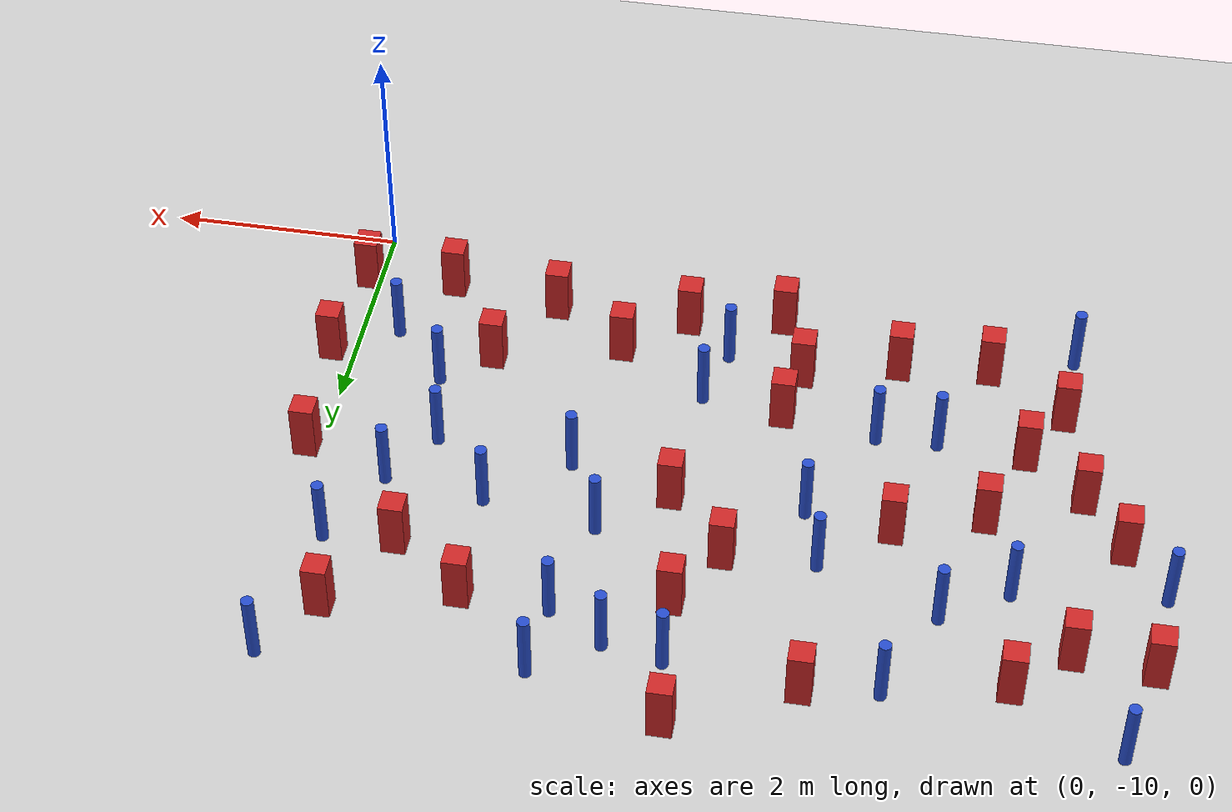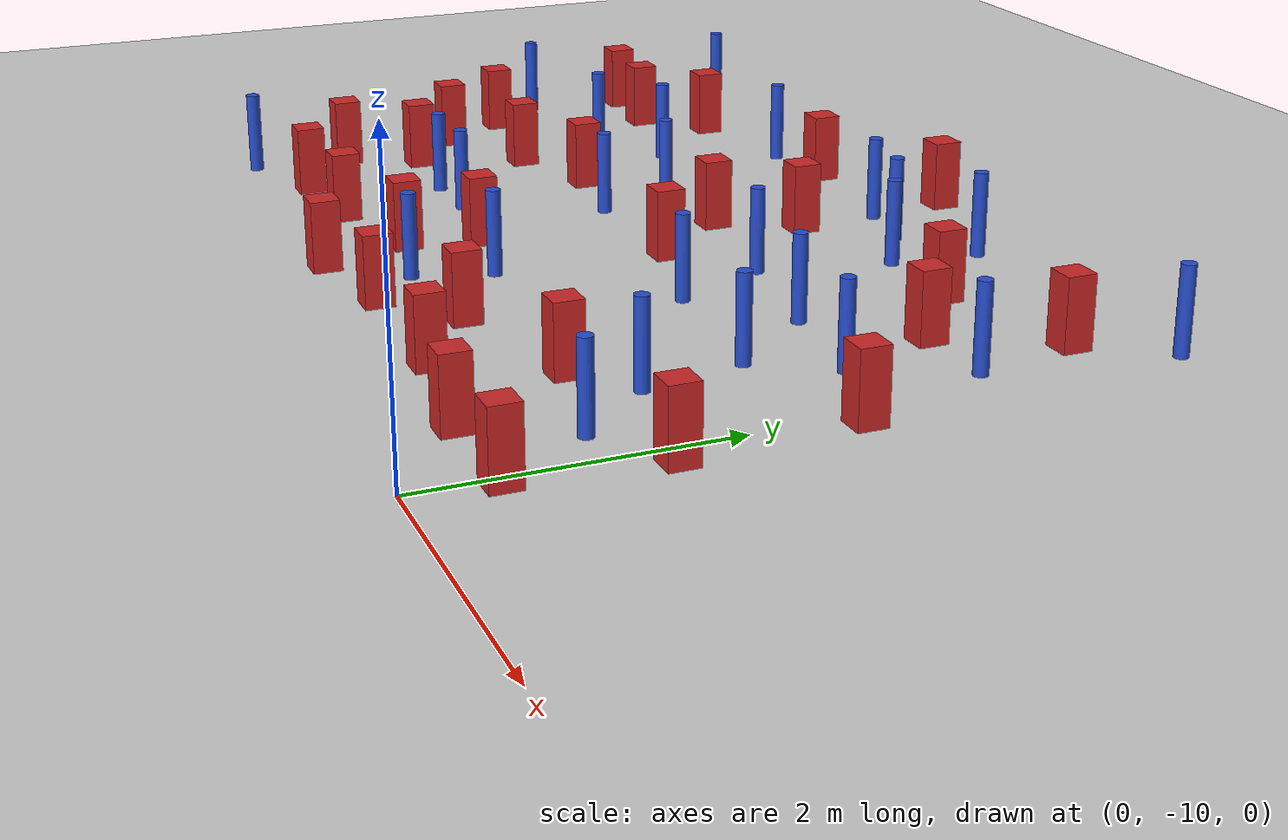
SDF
<sdf version="1.6">
 <world name="default">
  <model name="ground_plane">
   <static>1</static>
   <link name="link">
    <collision name="collision">
     <geometry><plane><normal>0 0 1</normal><size>100 100</size></plane></geometry>
     <surface><friction><ode><mu>100</mu><mu2>50</mu2></ode></friction></surface>
    </collision>
    <visual name="visual">
     <cast_shadows>0</cast_shadows>
     <geometry><plane><normal>0 0 1</normal><size>100 100</size></plane></geometry>
     <material>
      <ambient>1.0 1.0 1.0 1.0</ambient>
      <diffuse>0.8 0.8 0.8 1.0</diffuse>
      <specular>0.01 0.01 0.01 1.000000</specular>
     </material>
    </visual>
   </link>
  </model>
  <model name="square_post_obstacle2">
   <static>true</static>
   <pose>-1.20168735869 -8.64444956129 1.91545236811e-07 -7.35059704564e-06 1.12565212e-07 2.39332434364e-05</pose>
   <link name="link">
    <pose>0 0 0.25 0 -0 0</pose>
    <inertial>
     <mass>100</mass>
     <inertia>
      <ixx>0.166667</ixx>
      <ixy>0</ixy>
      <ixz>0</ixz>
      <iyy>0.166667</iyy>
      <iyz>0</iyz>
      <izz>0.166667</izz>
     </inertia>
    </inertial>
    <collision name="collision"><geometry><box><size>.2 .2 .5</size></box></geometry></collision>
    <visual name="visual">
     <geometry><box><size>.2 .2 .5</size></box></geometry>
     <material>
      <script><name>Gazebo/Red</name><uri>file://media/materials/scripts/gazebo.material</uri></script>
     </material>
    </visual>
   </link>
  </model>
  <model name="square_post_obstacle13">
   <static>true</static>
   <pose>-0.686878680234 -9.48801535259 1.91545236811e-07 -7.35059704564e-06 1.12565212e-07 2.39332434364e-05</pose>
   <link name="link">
    <pose>0 0 0.25 0 -0 0</pose>
    <inertial>
     <mass>100</mass>
     <inertia>
      <ixx>0.166667</ixx>
      <ixy>0</ixy>
      <ixz>0</ixz>
      <iyy>0.166667</iyy>
      <iyz>0</iyz>
      <izz>0.166667</izz>
     </inertia>
    </inertial>
    <collision name="collision"><geometry><box><size>.2 .2 .5</size></box></geometry></collision>
    <visual name="visual">
     <geometry><box><size>.2 .2 .5</size></box></geometry>
     <material>
      <script><name>Gazebo/Red</name><uri>file://media/materials/scripts/gazebo.material</uri></script>
     </material>
    </visual>
   </link>
  </model>
  <model name="pole_obstacle8">
   <static>true</static>
   <pose>-4.21248484026 -6.73208509425 7.38925637345e-09 -8.47170692796e-08 1.24976764786e-08 -1.74513093032e-07</pose>
   <link name="link">
    <pose>0 0 0.3 0 -0 0</pose>
    <inertial>
     <mass>1</mass>
     <inertia><ixx>0.145833</ixx><ixy>0</ixy><ixz>0</ixz><iyy>0.145833</iyy><iyz>0</iyz><izz>0.125</izz></inertia>
    </inertial>
    <collision name="collision">
     <geometry><cylinder><radius>0.05</radius><length>.6</length></cylinder></geometry>
    </collision>
    <visual name="visual">
     <geometry><cylinder><radius>0.05</radius><length>.6</length></cylinder></geometry>
     <material>
      <script><name>Gazebo/Blue</name><uri>file://media/materials/scripts/gazebo.material</uri></script>
     </material>
    </visual>
   </link>
  </model>
  <model name="square_post_obstacle15">
   <static>true</static>
   <pose>-2.27690724691 -8.92274579487 1.91545236811e-07 -7.35059704564e-06 1.12565212e-07 2.39332434364e-05</pose>
   <link name="link">
    <pose>0 0 0.25 0 -0 0</pose>
    <inertial>
     <mass>100</mass>
     <inertia>
      <ixx>0.166667</ixx>
      <ixy>0</ixy>
      <ixz>0</ixz>
      <iyy>0.166667</iyy>
      <iyz>0</iyz>
      <izz>0.166667</izz>
     </inertia>
    </inertial>
    <collision name="collision"><geometry><box><size>.2 .2 .5</size></box></geometry></collision>
    <visual name="visual">
     <geometry><box><size>.2 .2 .5</size></box></geometry>
     <material>
      <script><name>Gazebo/Red</name><uri>file://media/materials/scripts/gazebo.material</uri></script>
     </material>
    </visual>
   </link>
  </model>
  <model name="square_post_obstacle16">
   <static>true</static>
   <pose>-3.45719369046 -6.68199653338 1.91545236811e-07 -7.35059704564e-06 1.12565212e-07 2.39332434364e-05</pose>
   <link name="link">
    <pose>0 0 0.25 0 -0 0</pose>
    <inertial>
     <mass>100</mass>
     <inertia>
      <ixx>0.166667</ixx>
      <ixy>0</ixy>
      <ixz>0</ixz>
      <iyy>0.166667</iyy>
      <iyz>0</iyz>
      <izz>0.166667</izz>
     </inertia>
    </inertial>
    <collision name="collision"><geometry><box><size>.2 .2 .5</size></box></geometry></collision>
    <visual name="visual">
     <geometry><box><size>.2 .2 .5</size></box></geometry>
     <material>
      <script><name>Gazebo/Red</name><uri>file://media/materials/scripts/gazebo.material</uri></script>
     </material>
    </visual>
   </link>
  </model>
  <model name="pole_obstacle16">
   <static>true</static>
   <pose>-0.0484112616853 -5.11918985772 7.38925637345e-09 -8.47170692799e-08 1.24976765086e-08 -1.74513093017e-07</pose>
   <link name="link">
    <pose>0 0 0.3 0 -0 0</pose>
    <inertial>
     <mass>1</mass>
     <inertia><ixx>0.145833</ixx><ixy>0</ixy><ixz>0</ixz><iyy>0.145833</iyy><iyz>0</iyz><izz>0.125</izz></inertia>
    </inertial>
    <collision name="collision">
     <geometry><cylinder><radius>0.05</radius><length>.6</length></cylinder></geometry>
    </collision>
    <visual name="visual">
     <geometry><cylinder><radius>0.05</radius><length>.6</length></cylinder></geometry>
     <material>
      <script><name>Gazebo/Blue</name><uri>file://media/materials/scripts/gazebo.material</uri></script>
     </material>
    </visual>
   </link>
  </model>
  <model name="pole_obstacle18">
   <static>true</static>
   <pose>-5.04143109885 -8.23964521974 7.38925637345e-09 -8.471706928e-08 1.24976765081e-08 -1.74513093015e-07</pose>
   <link name="link">
    <pose>0 0 0.3 0 -0 0</pose>
    <inertial>
     <mass>1</mass>
     <inertia><ixx>0.145833</ixx><ixy>0</ixy><ixz>0</ixz><iyy>0.145833</iyy><iyz>0</iyz><izz>0.125</izz></inertia>
    </inertial>
    <collision name="collision">
     <geometry><cylinder><radius>0.05</radius><length>.6</length></cylinder></geometry>
    </collision>
    <visual name="visual">
     <geometry><cylinder><radius>0.05</radius><length>.6</length></cylinder></geometry>
     <material>
      <script><name>Gazebo/Blue</name><uri>file://media/materials/scripts/gazebo.material</uri></script>
     </material>
    </visual>
   </link>
  </model>
  <model name="pole_obstacle21">
   <static>true</static>
   <pose>-2.67010924325 -5.63333449304 7.38925637345e-09 -8.47170692798e-08 1.24976765033e-08 -1.74513093019e-07</pose>
   <link name="link">
    <pose>0 0 0.3 0 -0 0</pose>
    <inertial>
     <mass>1</mass>
     <inertia><ixx>0.145833</ixx><ixy>0</ixy><ixz>0</ixz><iyy>0.145833</iyy><iyz>0</iyz><izz>0.125</izz></inertia>
    </inertial>
    <collision name="collision">
     <geometry><cylinder><radius>0.05</radius><length>.6</length></cylinder></geometry>
    </collision>
    <visual name="visual">
     <geometry><cylinder><radius>0.05</radius><length>.6</length></cylinder></geometry>
     <material>
      <script><name>Gazebo/Blue</name><uri>file://media/materials/scripts/gazebo.material</uri></script>
     </material>
    </visual>
   </link>
  </model>
  <model name="square_post_obstacle39">
   <static>true</static>
   <pose>-2.95581052496 -7.26107989423 1.91545236811e-07 -7.35059704564e-06 1.12565212e-07 2.39332434364e-05</pose>
   <link name="link">
    <pose>0 0 0.25 0 -0 0</pose>
    <inertial>
     <mass>100</mass>
     <inertia>
      <ixx>0.166667</ixx>
      <ixy>0</ixy>
      <ixz>0</ixz>
      <iyy>0.166667</iyy>
      <iyz>0</iyz>
      <izz>0.166667</izz>
     </inertia>
    </inertial>
    <collision name="collision"><geometry><box><size>.2 .2 .5</size></box></geometry></collision>
    <visual name="visual">
     <geometry><box><size>.2 .2 .5</size></box></geometry>
     <material>
      <script><name>Gazebo/Red</name><uri>file://media/materials/scripts/gazebo.material</uri></script>
     </material>
    </visual>
   </link>
  </model>
  <model name="square_post_obstacle48">
   <static>true</static>
   <pose>-3.24626801114 -4.93754020114 1.91545236811e-07 -7.35059704564e-06 1.12565212e-07 2.39332434364e-05</pose>
   <link name="link">
    <pose>0 0 0.25 0 -0 0</pose>
    <inertial>
     <mass>100</mass>
     <inertia>
      <ixx>0.166667</ixx>
      <ixy>0</ixy>
      <ixz>0</ixz>
      <iyy>0.166667</iyy>
      <iyz>0</iyz>
      <izz>0.166667</izz>
     </inertia>
    </inertial>
    <collision name="collision"><geometry><box><size>.2 .2 .5</size></box></geometry></collision>
    <visual name="visual">
     <geometry><box><size>.2 .2 .5</size></box></geometry>
     <material>
      <script><name>Gazebo/Red</name><uri>file://media/materials/scripts/gazebo.material</uri></script>
     </material>
    </visual>
   </link>
  </model>
  <model name="square_post_obstacle52">
   <static>true</static>
   <pose>-5.49789595483 -7.42657653751 1.91545236811e-07 -7.35059704564e-06 1.12565212e-07 2.39332434364e-05</pose>
   <link name="link">
    <pose>0 0 0.25 0 -0 0</pose>
    <inertial>
     <mass>100</mass>
     <inertia>
      <ixx>0.166667</ixx>
      <ixy>0</ixy>
      <ixz>0</ixz>
      <iyy>0.166667</iyy>
      <iyz>0</iyz>
      <izz>0.166667</izz>
     </inertia>
    </inertial>
    <collision name="collision"><geometry><box><size>.2 .2 .5</size></box></geometry></collision>
    <visual name="visual">
     <geometry><box><size>.2 .2 .5</size></box></geometry>
     <material>
      <script><name>Gazebo/Red</name><uri>file://media/materials/scripts/gazebo.material</uri></script>
     </material>
    </visual>
   </link>
  </model>
  <model name="square_post_obstacle54">
   <static>true</static>
   <pose>-3.13216050707 -6.13981047084 1.91545236811e-07 -7.35059704564e-06 1.12565212e-07 2.39332434364e-05</pose>
   <link name="link">
    <pose>0 0 0.25 0 -0 0</pose>
    <inertial>
     <mass>100</mass>
     <inertia>
      <ixx>0.166667</ixx>
      <ixy>0</ixy>
      <ixz>0</ixz>
      <iyy>0.166667</iyy>
      <iyz>0</iyz>
      <izz>0.166667</izz>
     </inertia>
    </inertial>
    <collision name="collision"><geometry><box><size>.2 .2 .5</size></box></geometry></collision>
    <visual name="visual">
     <geometry><box><size>.2 .2 .5</size></box></geometry>
     <material>
      <script><name>Gazebo/Red</name><uri>file://media/materials/scripts/gazebo.material</uri></script>
     </material>
    </visual>
   </link>
  </model>
  <model name="pole_obstacle58">
   <static>true</static>
   <pose>-2.09490985106 -7.50292769107 7.38925637345e-09 -8.47170692798e-08 1.24976765033e-08 -1.74513093019e-07</pose>
   <link name="link">
    <pose>0 0 0.3 0 -0 0</pose>
    <inertial>
     <mass>1</mass>
     <inertia><ixx>0.145833</ixx><ixy>0</ixy><ixz>0</ixz><iyy>0.145833</iyy><iyz>0</iyz><izz>0.125</izz></inertia>
    </inertial>
    <collision name="collision">
     <geometry><cylinder><radius>0.05</radius><length>.6</length></cylinder></geometry>
    </collision>
    <visual name="visual">
     <geometry><cylinder><radius>0.05</radius><length>.6</length></cylinder></geometry>
     <material>
      <script><name>Gazebo/Blue</name><uri>file://media/materials/scripts/gazebo.material</uri></script>
     </material>
    </visual>
   </link>
  </model>
  <model name="square_post_obstacle62">
   <static>true</static>
   <pose>-5.40851448508 -9.15220973878 1.91545236811e-07 -7.35059704564e-06 1.12565212e-07 2.39332434364e-05</pose>
   <link name="link">
    <pose>0 0 0.25 0 -0 0</pose>
    <inertial>
     <mass>100</mass>
     <inertia>
      <ixx>0.166667</ixx>
      <ixy>0</ixy>
      <ixz>0</ixz>
      <iyy>0.166667</iyy>
      <iyz>0</iyz>
      <izz>0.166667</izz>
     </inertia>
    </inertial>
    <collision name="collision"><geometry><box><size>.2 .2 .5</size></box></geometry></collision>
    <visual name="visual">
     <geometry><box><size>.2 .2 .5</size></box></geometry>
     <material>
      <script><name>Gazebo/Red</name><uri>file://media/materials/scripts/gazebo.material</uri></script>
     </material>
    </visual>
   </link>
  </model>
  <model name="square_post_obstacle66">
   <static>true</static>
   <pose>-4.76406280884 -7.18029670145 1.91545236811e-07 -7.35059704564e-06 1.12565212e-07 2.39332434364e-05</pose>
   <link name="link">
    <pose>0 0 0.25 0 -0 0</pose>
    <inertial>
     <mass>100</mass>
     <inertia>
      <ixx>0.166667</ixx>
      <ixy>0</ixy>
      <ixz>0</ixz>
      <iyy>0.166667</iyy>
      <iyz>0</iyz>
      <izz>0.166667</izz>
     </inertia>
    </inertial>
    <collision name="collision"><geometry><box><size>.2 .2 .5</size></box></geometry></collision>
    <visual name="visual">
     <geometry><box><size>.2 .2 .5</size></box></geometry>
     <material>
      <script><name>Gazebo/Red</name><uri>file://media/materials/scripts/gazebo.material</uri></script>
     </material>
    </visual>
   </link>
  </model>
  <model name="square_post_obstacle68">
   <static>true</static>
   <pose>0.186246512709 -8.51093672795 1.91545236811e-07 -7.35059704564e-06 1.12565212e-07 2.39332434364e-05</pose>
   <link name="link">
    <pose>0 0 0.25 0 -0 0</pose>
    <inertial>
     <mass>100</mass>
     <inertia>
      <ixx>0.166667</ixx>
      <ixy>0</ixy>
      <ixz>0</ixz>
      <iyy>0.166667</iyy>
      <iyz>0</iyz>
      <izz>0.166667</izz>
     </inertia>
    </inertial>
    <collision name="collision"><geometry><box><size>.2 .2 .5</size></box></geometry></collision>
    <visual name="visual">
     <geometry><box><size>.2 .2 .5</size></box></geometry>
     <material>
      <script><name>Gazebo/Red</name><uri>file://media/materials/scripts/gazebo.material</uri></script>
     </material>
    </visual>
   </link>
  </model>
  <model name="square_post_obstacle79">
   <static>true</static>
   <pose>-0.861699221732 -6.4067654888 1.91545236811e-07 -7.35059704564e-06 1.12565212e-07 2.39332434364e-05</pose>
   <link name="link">
    <pose>0 0 0.25 0 -0 0</pose>
    <inertial>
     <mass>100</mass>
     <inertia>
      <ixx>0.166667</ixx>
      <ixy>0</ixy>
      <ixz>0</ixz>
      <iyy>0.166667</iyy>
      <iyz>0</iyz>
      <izz>0.166667</izz>
     </inertia>
    </inertial>
    <collision name="collision"><geometry><box><size>.2 .2 .5</size></box></geometry></collision>
    <visual name="visual">
     <geometry><box><size>.2 .2 .5</size></box></geometry>
     <material>
      <script><name>Gazebo/Red</name><uri>file://media/materials/scripts/gazebo.material</uri></script>
     </material>
    </visual>
   </link>
  </model>
  <model name="pole_obstacle82">
   <static>true</static>
   <pose>-6.11411648872 -9.4121967596 7.38925637345e-09 -8.471706928e-08 1.24976765081e-08 -1.74513093015e-07</pose>
   <link name="link">
    <pose>0 0 0.3 0 -0 0</pose>
    <inertial>
     <mass>1</mass>
     <inertia><ixx>0.145833</ixx><ixy>0</ixy><ixz>0</ixz><iyy>0.145833</iyy><iyz>0</iyz><izz>0.125</izz></inertia>
    </inertial>
    <collision name="collision">
     <geometry><cylinder><radius>0.05</radius><length>.6</length></cylinder></geometry>
    </collision>
    <visual name="visual">
     <geometry><cylinder><radius>0.05</radius><length>.6</length></cylinder></geometry>
     <material>
      <script><name>Gazebo/Blue</name><uri>file://media/materials/scripts/gazebo.material</uri></script>
     </material>
    </visual>
   </link>
  </model>
  <model name="pole_obstacle83">
   <static>true</static>
   <pose>-3.16235492324 -5.53448335277 7.38925637345e-09 -8.47170692798e-08 1.24976765033e-08 -1.74513093019e-07</pose>
   <link name="link">
    <pose>0 0 0.3 0 -0 0</pose>
    <inertial>
     <mass>1</mass>
     <inertia><ixx>0.145833</ixx><ixy>0</ixy><ixz>0</ixz><iyy>0.145833</iyy><iyz>0</iyz><izz>0.125</izz></inertia>
    </inertial>
    <collision name="collision">
     <geometry><cylinder><radius>0.05</radius><length>.6</length></cylinder></geometry>
    </collision>
    <visual name="visual">
     <geometry><cylinder><radius>0.05</radius><length>.6</length></cylinder></geometry>
     <material>
      <script><name>Gazebo/Blue</name><uri>file://media/materials/scripts/gazebo.material</uri></script>
     </material>
    </visual>
   </link>
  </model>
  <model name="pole_obstacle88">
   <static>true</static>
   <pose>-5.20990191274 -6.3407751545 7.38925637345e-09 -8.47170692796e-08 1.24976764786e-08 -1.74513093032e-07</pose>
   <link name="link">
    <pose>0 0 0.3 0 -0 0</pose>
    <inertial>
     <mass>1</mass>
     <inertia><ixx>0.145833</ixx><ixy>0</ixy><ixz>0</ixz><iyy>0.145833</iyy><iyz>0</iyz><izz>0.125</izz></inertia>
    </inertial>
    <collision name="collision">
     <geometry><cylinder><radius>0.05</radius><length>.6</length></cylinder></geometry>
    </collision>
    <visual name="visual">
     <geometry><cylinder><radius>0.05</radius><length>.6</length></cylinder></geometry>
     <material>
      <script><name>Gazebo/Blue</name><uri>file://media/materials/scripts/gazebo.material</uri></script>
     </material>
    </visual>
   </link>
  </model>
  <model name="square_post_obstacle82">
   <static>true</static>
   <pose>-6.25487078932 -6.10360038055 1.91545236811e-07 -7.35059704564e-06 1.12565212e-07 2.39332434364e-05</pose>
   <link name="link">
    <pose>0 0 0.25 0 -0 0</pose>
    <inertial>
     <mass>100</mass>
     <inertia>
      <ixx>0.166667</ixx>
      <ixy>0</ixy>
      <ixz>0</ixz>
      <iyy>0.166667</iyy>
      <iyz>0</iyz>
      <izz>0.166667</izz>
     </inertia>
    </inertial>
    <collision name="collision"><geometry><box><size>.2 .2 .5</size></box></geometry></collision>
    <visual name="visual">
     <geometry><box><size>.2 .2 .5</size></box></geometry>
     <material>
      <script><name>Gazebo/Red</name><uri>file://media/materials/scripts/gazebo.material</uri></script>
     </material>
    </visual>
   </link>
  </model>
  <model name="pole_obstacle101">
   <static>true</static>
   <pose>-2.20834698481 -5.90704364045 7.38925637345e-09 -8.47170692798e-08 1.24976765033e-08 -1.74513093019e-07</pose>
   <link name="link">
    <pose>0 0 0.3 0 -0 0</pose>
    <inertial>
     <mass>1</mass>
     <inertia><ixx>0.145833</ixx><ixy>0</ixy><ixz>0</ixz><iyy>0.145833</iyy><iyz>0</iyz><izz>0.125</izz></inertia>
    </inertial>
    <collision name="collision">
     <geometry><cylinder><radius>0.05</radius><length>.6</length></cylinder></geometry>
    </collision>
    <visual name="visual">
     <geometry><cylinder><radius>0.05</radius><length>.6</length></cylinder></geometry>
     <material>
      <script><name>Gazebo/Blue</name><uri>file://media/materials/scripts/gazebo.material</uri></script>
     </material>
    </visual>
   </link>
  </model>
  <model name="square_post_obstacle95">
   <static>true</static>
   <pose>-5.81103374965 -5.70045936742 1.91545236811e-07 -7.35059704564e-06 1.12565212e-07 2.39332434364e-05</pose>
   <link name="link">
    <pose>0 0 0.25 0 -0 0</pose>
    <inertial>
     <mass>100</mass>
     <inertia>
      <ixx>0.166667</ixx>
      <ixy>0</ixy>
      <ixz>0</ixz>
      <iyy>0.166667</iyy>
      <iyz>0</iyz>
      <izz>0.166667</izz>
     </inertia>
    </inertial>
    <collision name="collision"><geometry><box><size>.2 .2 .5</size></box></geometry></collision>
    <visual name="visual">
     <geometry><box><size>.2 .2 .5</size></box></geometry>
     <material>
      <script><name>Gazebo/Red</name><uri>file://media/materials/scripts/gazebo.material</uri></script>
     </material>
    </visual>
   </link>
  </model>
  <model name="pole_obstacle110">
   <static>true</static>
   <pose>-0.265892633473 -6.38199301766 7.38925637345e-09 -8.47170692799e-08 1.24976765096e-08 -1.74513093014e-07</pose>
   <link name="link">
    <pose>0 0 0.3 0 -0 0</pose>
    <inertial>
     <mass>1</mass>
     <inertia><ixx>0.145833</ixx><ixy>0</ixy><ixz>0</ixz><iyy>0.145833</iyy><iyz>0</iyz><izz>0.125</izz></inertia>
    </inertial>
    <collision name="collision">
     <geometry><cylinder><radius>0.05</radius><length>.6</length></cylinder></geometry>
    </collision>
    <visual name="visual">
     <geometry><cylinder><radius>0.05</radius><length>.6</length></cylinder></geometry>
     <material>
      <script><name>Gazebo/Blue</name><uri>file://media/materials/scripts/gazebo.material</uri></script>
     </material>
    </visual>
   </link>
  </model>
  <model name="pole_obstacle113">
   <static>true</static>
   <pose>-4.05169295337 -7.28666990241 7.38925637345e-09 -8.47170692796e-08 1.24976764786e-08 -1.74513093032e-07</pose>
   <link name="link">
    <pose>0 0 0.3 0 -0 0</pose>
    <inertial>
     <mass>1</mass>
     <inertia><ixx>0.145833</ixx><ixy>0</ixy><ixz>0</ixz><iyy>0.145833</iyy><iyz>0</iyz><izz>0.125</izz></inertia>
    </inertial>
    <collision name="collision">
     <geometry><cylinder><radius>0.05</radius><length>.6</length></cylinder></geometry>
    </collision>
    <visual name="visual">
     <geometry><cylinder><radius>0.05</radius><length>.6</length></cylinder></geometry>
     <material>
      <script><name>Gazebo/Blue</name><uri>file://media/materials/scripts/gazebo.material</uri></script>
     </material>
    </visual>
   </link>
  </model>
  <model name="square_post_obstacle102">
   <static>true</static>
   <pose>0.111374889757 -7.34810733922 1.91545236811e-07 -7.35059704564e-06 1.12565212e-07 2.39332434364e-05</pose>
   <link name="link">
    <pose>0 0 0.25 0 -0 0</pose>
    <inertial>
     <mass>100</mass>
     <inertia>
      <ixx>0.166667</ixx>
      <ixy>0</ixy>
      <ixz>0</ixz>
      <iyy>0.166667</iyy>
      <iyz>0</iyz>
      <izz>0.166667</izz>
     </inertia>
    </inertial>
    <collision name="collision"><geometry><box><size>.2 .2 .5</size></box></geometry></collision>
    <visual name="visual">
     <geometry><box><size>.2 .2 .5</size></box></geometry>
     <material>
      <script><name>Gazebo/Red</name><uri>file://media/materials/scripts/gazebo.material</uri></script>
     </material>
    </visual>
   </link>
  </model>
  <model name="pole_obstacle117">
   <static>true</static>
   <pose>-0.798303028623 -8.31573845078 7.38925637345e-09 -8.47170692797e-08 1.249767648e-08 -1.74513093032e-07</pose>
   <link name="link">
    <pose>0 0 0.3 0 -0 0</pose>
    <inertial>
     <mass>1</mass>
     <inertia><ixx>0.145833</ixx><ixy>0</ixy><ixz>0</ixz><iyy>0.145833</iyy><iyz>0</iyz><izz>0.125</izz></inertia>
    </inertial>
    <collision name="collision">
     <geometry><cylinder><radius>0.05</radius><length>.6</length></cylinder></geometry>
    </collision>
    <visual name="visual">
     <geometry><cylinder><radius>0.05</radius><length>.6</length></cylinder></geometry>
     <material>
      <script><name>Gazebo/Blue</name><uri>file://media/materials/scripts/gazebo.material</uri></script>
     </material>
    </visual>
   </link>
  </model>
  <model name="square_post_obstacle112">
   <static>true</static>
   <pose>-5.7759023202 -8.18765746175 1.91545236811e-07 -7.35059704564e-06 1.12565212e-07 2.39332434364e-05</pose>
   <link name="link">
    <pose>0 0 0.25 0 -0 0</pose>
    <inertial>
     <mass>100</mass>
     <inertia>
      <ixx>0.166667</ixx>
      <ixy>0</ixy>
      <ixz>0</ixz>
      <iyy>0.166667</iyy>
      <iyz>0</iyz>
      <izz>0.166667</izz>
     </inertia>
    </inertial>
    <collision name="collision"><geometry><box><size>.2 .2 .5</size></box></geometry></collision>
    <visual name="visual">
     <geometry><box><size>.2 .2 .5</size></box></geometry>
     <material>
      <script><name>Gazebo/Red</name><uri>file://media/materials/scripts/gazebo.material</uri></script>
     </material>
    </visual>
   </link>
  </model>
  <model name="pole_obstacle124">
   <static>true</static>
   <pose>-2.14353758086 -5.2739643794 7.38925637345e-09 -8.47170692798e-08 1.24976765033e-08 -1.74513093019e-07</pose>
   <link name="link">
    <pose>0 0 0.3 0 -0 0</pose>
    <inertial>
     <mass>1</mass>
     <inertia><ixx>0.145833</ixx><ixy>0</ixy><ixz>0</ixz><iyy>0.145833</iyy><iyz>0</iyz><izz>0.125</izz></inertia>
    </inertial>
    <collision name="collision">
     <geometry><cylinder><radius>0.05</radius><length>.6</length></cylinder></geometry>
    </collision>
    <visual name="visual">
     <geometry><cylinder><radius>0.05</radius><length>.6</length></cylinder></geometry>
     <material>
      <script><name>Gazebo/Blue</name><uri>file://media/materials/scripts/gazebo.material</uri></script>
     </material>
    </visual>
   </link>
  </model>
  <model name="pole_obstacle133">
   <static>true</static>
   <pose>-0.943221199095 -7.60565493368 7.38925637345e-09 -8.471706928e-08 1.24976765086e-08 -1.74513093015e-07</pose>
   <link name="link">
    <pose>0 0 0.3 0 -0 0</pose>
    <inertial>
     <mass>1</mass>
     <inertia><ixx>0.145833</ixx><ixy>0</ixy><ixz>0</ixz><iyy>0.145833</iyy><iyz>0</iyz><izz>0.125</izz></inertia>
    </inertial>
    <collision name="collision">
     <geometry><cylinder><radius>0.05</radius><length>.6</length></cylinder></geometry>
    </collision>
    <visual name="visual">
     <geometry><cylinder><radius>0.05</radius><length>.6</length></cylinder></geometry>
     <material>
      <script><name>Gazebo/Blue</name><uri>file://media/materials/scripts/gazebo.material</uri></script>
     </material>
    </visual>
   </link>
  </model>
  <model name="square_post_obstacle127">
   <static>true</static>
   <pose>-6.89645456358 -6.05000684082 1.91545236811e-07 -7.35059704564e-06 1.12565212e-07 2.39332434364e-05</pose>
   <link name="link">
    <pose>0 0 0.25 0 -0 0</pose>
    <inertial>
     <mass>100</mass>
     <inertia>
      <ixx>0.166667</ixx>
      <ixy>0</ixy>
      <ixz>0</ixz>
      <iyy>0.166667</iyy>
      <iyz>0</iyz>
      <izz>0.166667</izz>
     </inertia>
    </inertial>
    <collision name="collision"><geometry><box><size>.2 .2 .5</size></box></geometry></collision>
    <visual name="visual">
     <geometry><box><size>.2 .2 .5</size></box></geometry>
     <material>
      <script><name>Gazebo/Red</name><uri>file://media/materials/scripts/gazebo.material</uri></script>
     </material>
    </visual>
   </link>
  </model>
  <model name="square_post_obstacle132">
   <static>true</static>
   <pose>-2.79732385396 -9.34621682419 1.91545236811e-07 -7.35059704564e-06 1.12565212e-07 2.39332434364e-05</pose>
   <link name="link">
    <pose>0 0 0.25 0 -0 0</pose>
    <inertial>
     <mass>100</mass>
     <inertia>
      <ixx>0.166667</ixx>
      <ixy>0</ixy>
      <ixz>0</ixz>
      <iyy>0.166667</iyy>
      <iyz>0</iyz>
      <izz>0.166667</izz>
     </inertia>
    </inertial>
    <collision name="collision"><geometry><box><size>.2 .2 .5</size></box></geometry></collision>
    <visual name="visual">
     <geometry><box><size>.2 .2 .5</size></box></geometry>
     <material>
      <script><name>Gazebo/Red</name><uri>file://media/materials/scripts/gazebo.material</uri></script>
     </material>
    </visual>
   </link>
  </model>
  <model name="square_post_obstacle135">
   <static>true</static>
   <pose>-3.7329671377 -8.34502836426 1.91545236811e-07 -7.35059704564e-06 1.12565212e-07 2.39332434364e-05</pose>
   <link name="link">
    <pose>0 0 0.25 0 -0 0</pose>
    <inertial>
     <mass>100</mass>
     <inertia>
      <ixx>0.166667</ixx>
      <ixy>0</ixy>
      <ixz>0</ixz>
      <iyy>0.166667</iyy>
      <iyz>0</iyz>
      <izz>0.166667</izz>
     </inertia>
    </inertial>
    <collision name="collision"><geometry><box><size>.2 .2 .5</size></box></geometry></collision>
    <visual name="visual">
     <geometry><box><size>.2 .2 .5</size></box></geometry>
     <material>
      <script><name>Gazebo/Red</name><uri>file://media/materials/scripts/gazebo.material</uri></script>
     </material>
    </visual>
   </link>
  </model>
  <model name="pole_obstacle147">
   <static>true</static>
   <pose>-6.69192343316 -5.21139188052 7.38925637345e-09 -8.47170692796e-08 1.24976764786e-08 -1.74513093032e-07</pose>
   <link name="link">
    <pose>0 0 0.3 0 -0 0</pose>
    <inertial>
     <mass>1</mass>
     <inertia><ixx>0.145833</ixx><ixy>0</ixy><ixz>0</ixz><iyy>0.145833</iyy><iyz>0</iyz><izz>0.125</izz></inertia>
    </inertial>
    <collision name="collision">
     <geometry><cylinder><radius>0.05</radius><length>.6</length></cylinder></geometry>
    </collision>
    <visual name="visual">
     <geometry><cylinder><radius>0.05</radius><length>.6</length></cylinder></geometry>
     <material>
      <script><name>Gazebo/Blue</name><uri>file://media/materials/scripts/gazebo.material</uri></script>
     </material>
    </visual>
   </link>
  </model>
  <model name="square_post_obstacle142">
   <static>true</static>
   <pose>-1.63710178331 -9.35169731791 1.91545236811e-07 -7.35059704564e-06 1.12565212e-07 2.39332434364e-05</pose>
   <link name="link">
    <pose>0 0 0.25 0 -0 0</pose>
    <inertial>
     <mass>100</mass>
     <inertia>
      <ixx>0.166667</ixx>
      <ixy>0</ixy>
      <ixz>0</ixz>
      <iyy>0.166667</iyy>
      <iyz>0</iyz>
      <izz>0.166667</izz>
     </inertia>
    </inertial>
    <collision name="collision"><geometry><box><size>.2 .2 .5</size></box></geometry></collision>
    <visual name="visual">
     <geometry><box><size>.2 .2 .5</size></box></geometry>
     <material>
      <script><name>Gazebo/Red</name><uri>file://media/materials/scripts/gazebo.material</uri></script>
     </material>
    </visual>
   </link>
  </model>
  <model name="square_post_obstacle143">
   <static>true</static>
   <pose>-1.47837197742 -5.93535168502 1.91545236811e-07 -7.35059704564e-06 1.12565212e-07 2.39332434364e-05</pose>
   <link name="link">
    <pose>0 0 0.25 0 -0 0</pose>
    <inertial>
     <mass>100</mass>
     <inertia>
      <ixx>0.166667</ixx>
      <ixy>0</ixy>
      <ixz>0</ixz>
      <iyy>0.166667</iyy>
      <iyz>0</iyz>
      <izz>0.166667</izz>
     </inertia>
    </inertial>
    <collision name="collision"><geometry><box><size>.2 .2 .5</size></box></geometry></collision>
    <visual name="visual">
     <geometry><box><size>.2 .2 .5</size></box></geometry>
     <material>
      <script><name>Gazebo/Red</name><uri>file://media/materials/scripts/gazebo.material</uri></script>
     </material>
    </visual>
   </link>
  </model>
  <model name="square_post_obstacle149">
   <static>true</static>
   <pose>0.0851105158133 -9.46386621411 1.91545236811e-07 -7.35059704564e-06 1.12565212e-07 2.39332434364e-05</pose>
   <link name="link">
    <pose>0 0 0.25 0 -0 0</pose>
    <inertial>
     <mass>100</mass>
     <inertia>
      <ixx>0.166667</ixx>
      <ixy>0</ixy>
      <ixz>0</ixz>
      <iyy>0.166667</iyy>
      <iyz>0</iyz>
      <izz>0.166667</izz>
     </inertia>
    </inertial>
    <collision name="collision"><geometry><box><size>.2 .2 .5</size></box></geometry></collision>
    <visual name="visual">
     <geometry><box><size>.2 .2 .5</size></box></geometry>
     <material>
      <script><name>Gazebo/Red</name><uri>file://media/materials/scripts/gazebo.material</uri></script>
     </material>
    </visual>
   </link>
  </model>
  <model name="square_post_obstacle150">
   <static>true</static>
   <pose>-3.83839042028 -8.85676622557 1.91545236811e-07 -7.35059704564e-06 1.12565212e-07 2.39332434364e-05</pose>
   <link name="link">
    <pose>0 0 0.25 0 -0 0</pose>
    <inertial>
     <mass>100</mass>
     <inertia>
      <ixx>0.166667</ixx>
      <ixy>0</ixy>
      <ixz>0</ixz>
      <iyy>0.166667</iyy>
      <iyz>0</iyz>
      <izz>0.166667</izz>
     </inertia>
    </inertial>
    <collision name="collision"><geometry><box><size>.2 .2 .5</size></box></geometry></collision>
    <visual name="visual">
     <geometry><box><size>.2 .2 .5</size></box></geometry>
     <material>
      <script><name>Gazebo/Red</name><uri>file://media/materials/scripts/gazebo.material</uri></script>
     </material>
    </visual>
   </link>
  </model>
  <model name="pole_obstacle160">
   <static>true</static>
   <pose>-0.326181616031 -8.83766050493 7.38925637345e-09 -8.47170692796e-08 1.24976764724e-08 -1.74513093036e-07</pose>
   <link name="link">
    <pose>0 0 0.3 0 -0 0</pose>
    <inertial>
     <mass>1</mass>
     <inertia><ixx>0.145833</ixx><ixy>0</ixy><ixz>0</ixz><iyy>0.145833</iyy><iyz>0</iyz><izz>0.125</izz></inertia>
    </inertial>
    <collision name="collision">
     <geometry><cylinder><radius>0.05</radius><length>.6</length></cylinder></geometry>
    </collision>
    <visual name="visual">
     <geometry><cylinder><radius>0.05</radius><length>.6</length></cylinder></geometry>
     <material>
      <script><name>Gazebo/Blue</name><uri>file://media/materials/scripts/gazebo.material</uri></script>
     </material>
    </visual>
   </link>
  </model>
  <model name="pole_obstacle162">
   <static>true</static>
   <pose>-5.74827867316 -6.67952173121 7.38925637345e-09 -8.47170692796e-08 1.24976764786e-08 -1.74513093032e-07</pose>
   <link name="link">
    <pose>0 0 0.3 0 -0 0</pose>
    <inertial>
     <mass>1</mass>
     <inertia><ixx>0.145833</ixx><ixy>0</ixy><ixz>0</ixz><iyy>0.145833</iyy><iyz>0</iyz><izz>0.125</izz></inertia>
    </inertial>
    <collision name="collision">
     <geometry><cylinder><radius>0.05</radius><length>.6</length></cylinder></geometry>
    </collision>
    <visual name="visual">
     <geometry><cylinder><radius>0.05</radius><length>.6</length></cylinder></geometry>
     <material>
      <script><name>Gazebo/Blue</name><uri>file://media/materials/scripts/gazebo.material</uri></script>
     </material>
    </visual>
   </link>
  </model>
  <model name="square_post_obstacle154">
   <static>true</static>
   <pose>-6.6114091205 -7.26844097607 1.91545236811e-07 -7.35059704564e-06 1.12565212e-07 2.39332434364e-05</pose>
   <link name="link">
    <pose>0 0 0.25 0 -0 0</pose>
    <inertial>
     <mass>100</mass>
     <inertia>
      <ixx>0.166667</ixx>
      <ixy>0</ixy>
      <ixz>0</ixz>
      <iyy>0.166667</iyy>
      <iyz>0</iyz>
      <izz>0.166667</izz>
     </inertia>
    </inertial>
    <collision name="collision"><geometry><box><size>.2 .2 .5</size></box></geometry></collision>
    <visual name="visual">
     <geometry><box><size>.2 .2 .5</size></box></geometry>
     <material>
      <script><name>Gazebo/Red</name><uri>file://media/materials/scripts/gazebo.material</uri></script>
     </material>
    </visual>
   </link>
  </model>
  <model name="pole_obstacle177">
   <static>true</static>
   <pose>-1.45409843802 -6.98519091089 7.38925637345e-09 -8.47170692799e-08 1.24976765033e-08 -1.74513093018e-07</pose>
   <link name="link">
    <pose>0 0 0.3 0 -0 0</pose>
    <inertial>
     <mass>1</mass>
     <inertia><ixx>0.145833</ixx><ixy>0</ixy><ixz>0</ixz><iyy>0.145833</iyy><iyz>0</iyz><izz>0.125</izz></inertia>
    </inertial>
    <collision name="collision">
     <geometry><cylinder><radius>0.05</radius><length>.6</length></cylinder></geometry>
    </collision>
    <visual name="visual">
     <geometry><cylinder><radius>0.05</radius><length>.6</length></cylinder></geometry>
     <material>
      <script><name>Gazebo/Blue</name><uri>file://media/materials/scripts/gazebo.material</uri></script>
     </material>
    </visual>
   </link>
  </model>
  <model name="pole_obstacle178">
   <static>true</static>
   <pose>-4.84137146051 -5.50756568313 7.38925637345e-09 -8.47170692796e-08 1.24976764786e-08 -1.74513093032e-07</pose>
   <link name="link">
    <pose>0 0 0.3 0 -0 0</pose>
    <inertial>
     <mass>1</mass>
     <inertia><ixx>0.145833</ixx><ixy>0</ixy><ixz>0</ixz><iyy>0.145833</iyy><iyz>0</iyz><izz>0.125</izz></inertia>
    </inertial>
    <collision name="collision">
     <geometry><cylinder><radius>0.05</radius><length>.6</length></cylinder></geometry>
    </collision>
    <visual name="visual">
     <geometry><cylinder><radius>0.05</radius><length>.6</length></cylinder></geometry>
     <material>
      <script><name>Gazebo/Blue</name><uri>file://media/materials/scripts/gazebo.material</uri></script>
     </material>
    </visual>
   </link>
  </model>
  <model name="pole_obstacle180">
   <static>true</static>
   <pose>-0.613112874145 -7.09411867444 7.38925637345e-09 -8.471706928e-08 1.24976765086e-08 -1.74513093015e-07</pose>
   <link name="link">
    <pose>0 0 0.3 0 -0 0</pose>
    <inertial>
     <mass>1</mass>
     <inertia><ixx>0.145833</ixx><ixy>0</ixy><ixz>0</ixz><iyy>0.145833</iyy><iyz>0</iyz><izz>0.125</izz></inertia>
    </inertial>
    <collision name="collision">
     <geometry><cylinder><radius>0.05</radius><length>.6</length></cylinder></geometry>
    </collision>
    <visual name="visual">
     <geometry><cylinder><radius>0.05</radius><length>.6</length></cylinder></geometry>
     <material>
      <script><name>Gazebo/Blue</name><uri>file://media/materials/scripts/gazebo.material</uri></script>
     </material>
    </visual>
   </link>
  </model>
  <model name="pole_obstacle181">
   <static>true</static>
   <pose>-3.18913044182 -9.00331764369 7.38925637345e-09 -8.47170692799e-08 1.24976765012e-08 -1.74513093021e-07</pose>
   <link name="link">
    <pose>0 0 0.3 0 -0 0</pose>
    <inertial>
     <mass>1</mass>
     <inertia><ixx>0.145833</ixx><ixy>0</ixy><ixz>0</ixz><iyy>0.145833</iyy><iyz>0</iyz><izz>0.125</izz></inertia>
    </inertial>
    <collision name="collision">
     <geometry><cylinder><radius>0.05</radius><length>.6</length></cylinder></geometry>
    </collision>
    <visual name="visual">
     <geometry><cylinder><radius>0.05</radius><length>.6</length></cylinder></geometry>
     <material>
      <script><name>Gazebo/Blue</name><uri>file://media/materials/scripts/gazebo.material</uri></script>
     </material>
    </visual>
   </link>
  </model>
  <model name="pole_obstacle187">
   <static>true</static>
   <pose>-4.53011164115 -8.22498681126 7.38925637345e-09 -8.471706928e-08 1.24976765081e-08 -1.74513093015e-07</pose>
   <link name="link">
    <pose>0 0 0.3 0 -0 0</pose>
    <inertial>
     <mass>1</mass>
     <inertia><ixx>0.145833</ixx><ixy>0</ixy><ixz>0</ixz><iyy>0.145833</iyy><iyz>0</iyz><izz>0.125</izz></inertia>
    </inertial>
    <collision name="collision">
     <geometry><cylinder><radius>0.05</radius><length>.6</length></cylinder></geometry>
    </collision>
    <visual name="visual">
     <geometry><cylinder><radius>0.05</radius><length>.6</length></cylinder></geometry>
     <material>
      <script><name>Gazebo/Blue</name><uri>file://media/materials/scripts/gazebo.material</uri></script>
     </material>
    </visual>
   </link>
  </model>
  <model name="square_post_obstacle179">
   <static>true</static>
   <pose>-4.23212289176 -5.42400647802 1.91545236811e-07 -7.35059704564e-06 1.12565212e-07 2.39332434364e-05</pose>
   <link name="link">
    <pose>0 0 0.25 0 -0 0</pose>
    <inertial>
     <mass>100</mass>
     <inertia>
      <ixx>0.166667</ixx>
      <ixy>0</ixy>
      <ixz>0</ixz>
      <iyy>0.166667</iyy>
      <iyz>0</iyz>
      <izz>0.166667</izz>
     </inertia>
    </inertial>
    <collision name="collision"><geometry><box><size>.2 .2 .5</size></box></geometry></collision>
    <visual name="visual">
     <geometry><box><size>.2 .2 .5</size></box></geometry>
     <material>
      <script><name>Gazebo/Red</name><uri>file://media/materials/scripts/gazebo.material</uri></script>
     </material>
    </visual>
   </link>
  </model>
  <model name="square_post_obstacle186">
   <static>true</static>
   <pose>-3.6074819805 -9.48607499063 1.91545236811e-07 -7.35059704564e-06 1.12565212e-07 2.39332434364e-05</pose>
   <link name="link">
    <pose>0 0 0.25 0 -0 0</pose>
    <inertial>
     <mass>100</mass>
     <inertia>
      <ixx>0.166667</ixx>
      <ixy>0</ixy>
      <ixz>0</ixz>
      <iyy>0.166667</iyy>
      <iyz>0</iyz>
      <izz>0.166667</izz>
     </inertia>
    </inertial>
    <collision name="collision"><geometry><box><size>.2 .2 .5</size></box></geometry></collision>
    <visual name="visual">
     <geometry><box><size>.2 .2 .5</size></box></geometry>
     <material>
      <script><name>Gazebo/Red</name><uri>file://media/materials/scripts/gazebo.material</uri></script>
     </material>
    </visual>
   </link>
  </model>
  <model name="square_post_obstacle193">
   <static>true</static>
   <pose>-6.06499255855 -8.70144914205 1.91545236811e-07 -7.35059704564e-06 1.12565212e-07 2.39332434364e-05</pose>
   <link name="link">
    <pose>0 0 0.25 0 -0 0</pose>
    <inertial>
     <mass>100</mass>
     <inertia>
      <ixx>0.166667</ixx>
      <ixy>0</ixy>
      <ixz>0</ixz>
      <iyy>0.166667</iyy>
      <iyz>0</iyz>
      <izz>0.166667</izz>
     </inertia>
    </inertial>
    <collision name="collision"><geometry><box><size>.2 .2 .5</size></box></geometry></collision>
    <visual name="visual">
     <geometry><box><size>.2 .2 .5</size></box></geometry>
     <material>
      <script><name>Gazebo/Red</name><uri>file://media/materials/scripts/gazebo.material</uri></script>
     </material>
    </visual>
   </link>
  </model>
  <model name="square_post_obstacle197">
   <static>true</static>
   <pose>-4.64237711382 -9.08144436456 1.91545236811e-07 -7.35059704564e-06 1.12565212e-07 2.39332434364e-05</pose>
   <link name="link">
    <pose>0 0 0.25 0 -0 0</pose>
    <inertial>
     <mass>100</mass>
     <inertia>
      <ixx>0.166667</ixx>
      <ixy>0</ixy>
      <ixz>0</ixz>
      <iyy>0.166667</iyy>
      <iyz>0</iyz>
      <izz>0.166667</izz>
     </inertia>
    </inertial>
    <collision name="collision"><geometry><box><size>.2 .2 .5</size></box></geometry></collision>
    <visual name="visual">
     <geometry><box><size>.2 .2 .5</size></box></geometry>
     <material>
      <script><name>Gazebo/Red</name><uri>file://media/materials/scripts/gazebo.material</uri></script>
     </material>
    </visual>
   </link>
  </model>
  <model name="square_post_obstacle198">
   <static>true</static>
   <pose>-6.27294421472 -7.77631307728 1.91545236811e-07 -7.35059704564e-06 1.12565212e-07 2.39332434364e-05</pose>
   <link name="link">
    <pose>0 0 0.25 0 -0 0</pose>
    <inertial>
     <mass>100</mass>
     <inertia>
      <ixx>0.166667</ixx>
      <ixy>0</ixy>
      <ixz>0</ixz>
      <iyy>0.166667</iyy>
      <iyz>0</iyz>
      <izz>0.166667</izz>
     </inertia>
    </inertial>
    <collision name="collision"><geometry><box><size>.2 .2 .5</size></box></geometry></collision>
    <visual name="visual">
     <geometry><box><size>.2 .2 .5</size></box></geometry>
     <material>
      <script><name>Gazebo/Red</name><uri>file://media/materials/scripts/gazebo.material</uri></script>
     </material>
    </visual>
   </link>
  </model>
  <model name="pole_obstacle193">
   <static>true</static>
   <pose>-2.41038675366 -6.82674292891 7.38925637345e-09 -8.47170692798e-08 1.24976765033e-08 -1.74513093019e-07</pose>
   <link name="link">
    <pose>0 0 0.3 0 -0 0</pose>
    <inertial>
     <mass>1</mass>
     <inertia><ixx>0.145833</ixx><ixy>0</ixy><ixz>0</ixz><iyy>0.145833</iyy><iyz>0</iyz><izz>0.125</izz></inertia>
    </inertial>
    <collision name="collision">
     <geometry><cylinder><radius>0.05</radius><length>.6</length></cylinder></geometry>
    </collision>
    <visual name="visual">
     <geometry><cylinder><radius>0.05</radius><length>.6</length></cylinder></geometry>
     <material>
      <script><name>Gazebo/Blue</name><uri>file://media/materials/scripts/gazebo.material</uri></script>
     </material>
    </visual>
   </link>
  </model>
  <model name="pole_obstacle208">
   <static>true</static>
   <pose>-3.03878442317 -8.46626080254 7.38925637345e-09 -8.47170692799e-08 1.24976765012e-08 -1.74513093021e-07</pose>
   <link name="link">
    <pose>0 0 0.3 0 -0 0</pose>
    <inertial>
     <mass>1</mass>
     <inertia><ixx>0.145833</ixx><ixy>0</ixy><ixz>0</ixz><iyy>0.145833</iyy><iyz>0</iyz><izz>0.125</izz></inertia>
    </inertial>
    <collision name="collision">
     <geometry><cylinder><radius>0.05</radius><length>.6</length></cylinder></geometry>
    </collision>
    <visual name="visual">
     <geometry><cylinder><radius>0.05</radius><length>.6</length></cylinder></geometry>
     <material>
      <script><name>Gazebo/Blue</name><uri>file://media/materials/scripts/gazebo.material</uri></script>
     </material>
    </visual>
   </link>
  </model>
  <model name="pole_obstacle213">
   <static>true</static>
   <pose>-6.9726396287 -6.82949952024 7.38925637345e-09 -8.47170692796e-08 1.24976764786e-08 -1.74513093032e-07</pose>
   <link name="link">
    <pose>0 0 0.3 0 -0 0</pose>
    <inertial>
     <mass>1</mass>
     <inertia><ixx>0.145833</ixx><ixy>0</ixy><ixz>0</ixz><iyy>0.145833</iyy><iyz>0</iyz><izz>0.125</izz></inertia>
    </inertial>
    <collision name="collision">
     <geometry><cylinder><radius>0.05</radius><length>.6</length></cylinder></geometry>
    </collision>
    <visual name="visual">
     <geometry><cylinder><radius>0.05</radius><length>.6</length></cylinder></geometry>
     <material>
      <script><name>Gazebo/Blue</name><uri>file://media/materials/scripts/gazebo.material</uri></script>
     </material>
    </visual>
   </link>
  </model>
  <model name="square_post_obstacle210">
   <static>true</static>
   <pose>-0.431206176657 -5.66132340548 1.91545236811e-07 -7.35059704564e-06 1.12565212e-07 2.39332434364e-05</pose>
   <link name="link">
    <pose>0 0 0.25 0 -0 0</pose>
    <inertial>
     <mass>100</mass>
     <inertia>
      <ixx>0.166667</ixx>
      <ixy>0</ixy>
      <ixz>0</ixz>
      <iyy>0.166667</iyy>
      <iyz>0</iyz>
      <izz>0.166667</izz>
     </inertia>
    </inertial>
    <collision name="collision"><geometry><box><size>.2 .2 .5</size></box></geometry></collision>
    <visual name="visual">
     <geometry><box><size>.2 .2 .5</size></box></geometry>
     <material>
      <script><name>Gazebo/Red</name><uri>file://media/materials/scripts/gazebo.material</uri></script>
     </material>
    </visual>
   </link>
  </model>
 </world>
</sdf>
